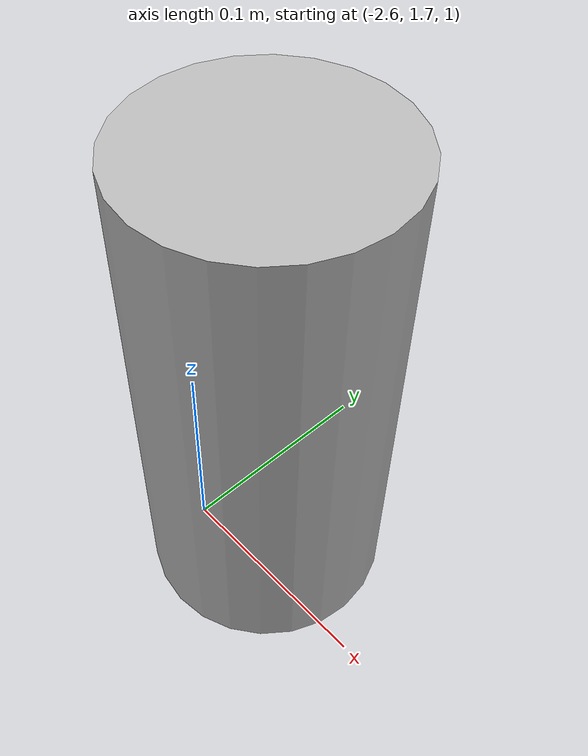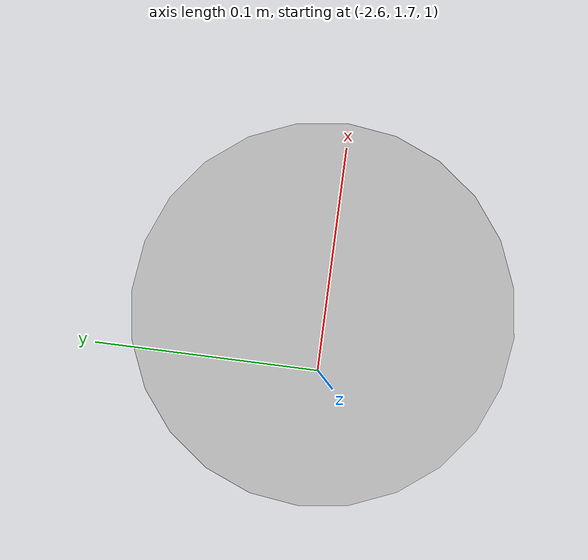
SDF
<sdf version="1.6">
 <world name="default">
  <model name="ground_plane">
   <static>1</static>
   <link name="link">
    <collision name="collision">
     <geometry><plane><normal>0 0 1</normal><size>100 100</size></plane></geometry>
     <surface><friction><ode><mu>100</mu><mu2>50</mu2></ode></friction></surface>
    </collision>
    <visual name="visual">
     <cast_shadows>0</cast_shadows>
     <geometry><plane><normal>0 0 1</normal><size>100 100</size></plane></geometry>
     <material>
      <script><uri>file://media/materials/scripts/gazebo.material</uri><name>Gazebo/Grey</name></script>
     </material>
    </visual>
   </link>
  </model>
  <model name="beer">
   <link name="link">
    <pose>0 0 0.115 0 -0 0</pose>
    <inertial>
     <mass>0.39</mass>
     <inertia><ixx>0.00058</ixx><ixy>0</ixy><ixz>0</ixz><iyy>0.00058</iyy><iyz>0</iyz><izz>0.00019</izz></inertia>
    </inertial>
    <collision name="collision">
     <geometry><cylinder><radius>0.055</radius><length>0.23</length></cylinder></geometry>
    </collision>
    <visual name="visual">
     <geometry><cylinder><radius>0.055</radius><length>0.23</length></cylinder></geometry>
     <material>
      <script>
       <uri>model://beer/materials/scripts</uri>
       <uri>model://beer/materials/textures</uri>
       <name>Beer/Diffuse</name>
      </script>
     </material>
    </visual>
   </link>
   <pose>-2.56949 1.71497 1 1.2e-05 6.1e-05 -0.000115</pose>
  </model>
 </world>
</sdf>
